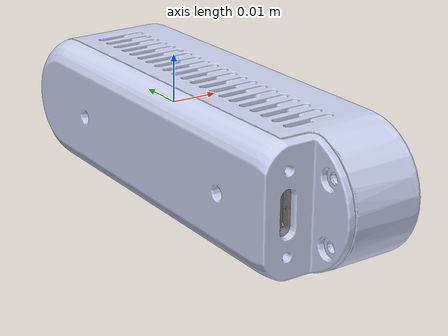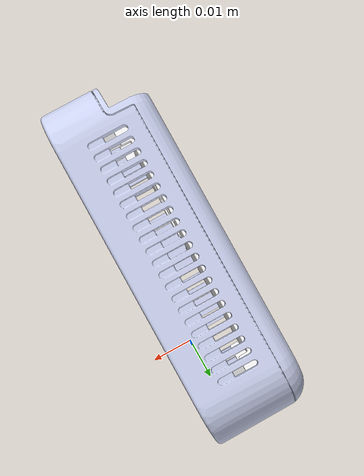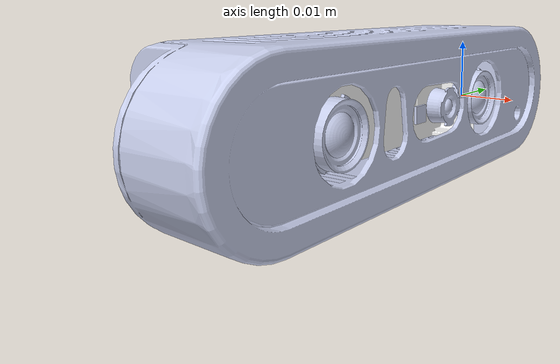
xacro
<?xml version="1.0" encoding="utf-8"?>
<robot name="dabai_dcw2" xmlns:xacro="http://ros.org/wiki/xacro">
    <xacro:include filename="dabai_dcw2.urdf.xacro"/>
  <link name="base_link"/>

  <joint name="base_link_to_camera_link" type="fixed">
    <parent link="base_link"/>
    <child link="camera_link"/>
    <origin xyz="0 0 0" rpy="0 0 0"/>
  </joint>
</robot>

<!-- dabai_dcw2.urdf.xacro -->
<robot xmlns:xacro="http://ros.org/wiki/xacro" name="dabai_dcw2">
    <xacro:property name="mesh_path" value="package://orbbec_description/meshes/dabai_dcw2/" />
  <link
    name="camera_bottom_screw_frame">
    <inertial>
      <origin
        xyz="0.00753601137002364 -0.000508837515662511 0.0122696825103624"
        rpy="0 0 0" />
      <mass
        value="0.0145098733371325" />
      <inertia
        ixx="1.31154092579587E-05"
        ixy="2.30174744915791E-07"
        ixz="-1.33602201591692E-09"
        iyy="1.37294183645858E-06"
        iyz="-1.54099158222408E-08"
        izz="1.23744229267791E-05" />
    </inertial>
    <visual>
      <origin
        xyz="0 0 0"
        rpy="0 0 0" />
      <geometry>
        <mesh
          filename="${mesh_path}camera_bottom_screw_frame.STL" />
      </geometry>
      <material
        name="">
        <color
          rgba="0.792156862745098 0.819607843137255 0.933333333333333 1" />
      </material>
    </visual>
    <collision>
      <origin
        xyz="0 0 0"
        rpy="0 0 0" />
      <geometry>
        <mesh
          filename="${mesh_path}camera_bottom_screw_frame.STL" />
      </geometry>
    </collision>
  </link>
  <link
    name="camera_link">
    <inertial>
      <origin
        xyz="-0.0118005356153812 -0.0141974857655144 0.000145850272853201"
        rpy="0 0 0" />
      <mass
        value="0.00671888510767732" />
      <inertia
        ixx="3.01293153853197E-06"
        ixy="2.40333600558122E-08"
        ixz="4.54286282508884E-09"
        iyy="3.06507725447966E-07"
        iyz="8.9126125587526E-09"
        izz="2.88108379431653E-06" />
    </inertial>
    <visual>
      <origin
        xyz="-0.01258 -0.02 -0.0123"
        rpy="0 0 0" />
      <geometry>
        <mesh
          filename="${mesh_path}base_link.STL" />
      </geometry>
      <material
        name="">
        <color
          rgba="1 1 1 1" />
      </material>
    </visual>
    <collision>
      <origin
        xyz="-0.01258 -0.02 -0.0123"
        rpy="0 0 0" />
      <geometry>
        <mesh
          filename="${mesh_path}base_link.STL" />
      </geometry>
    </collision>
  </link>
  <joint
    name="camera_bottom_screw_frame"
    type="fixed">
    <origin
      xyz="-0.01258 -0.02 -0.0123"
      rpy="0 0 0" />
    <parent
      link="camera_link" />
    <child
      link="camera_bottom_screw_frame" />
    <axis
      xyz="0 0 0" />
  </joint>
  <link
    name="camera_right_ir_frame">
    <inertial>
      <origin
        xyz="0.00215231622805329 2.59649261674655E-08 -3.21639014410014E-08"
        rpy="0 0 0" />
      <mass
        value="0.000275226856772834" />
      <inertia
        ixx="3.08047688060934E-09"
        ixy="-2.94969000144517E-15"
        ixz="3.6528725849673E-15"
        iyy="1.92908990518636E-09"
        iyz="2.50412547541003E-14"
        izz="1.92907796037669E-09" />
    </inertial>
    <visual>
      <origin
        xyz="0 0 0"
        rpy="0 0 0" />
      <geometry>
        <mesh
          filename="${mesh_path}camera_right_ir_frame.STL" />
      </geometry>
      <material
        name="">
        <color
          rgba="0.792156862745098 0.819607843137255 0.933333333333333 1" />
      </material>
    </visual>
    <collision>
      <origin
        xyz="0 0 0"
        rpy="0 0 0" />
      <geometry>
        <mesh
          filename="${mesh_path}camera_right_ir_frame.STL" />
      </geometry>
    </collision>
  </link>
  <joint
    name="camera_right_ir_frame"
    type="fixed">
    <origin
      xyz="0 -0.04 0"
      rpy="0 0 0" />
    <parent
      link="camera_depth_frame" />
    <child
      link="camera_right_ir_frame" />
    <axis
      xyz="0 0 0" />
  </joint>
  <link
    name="camera_left_ir_frame">
    <inertial>
      <origin
        xyz="0.00215231622805329 2.59649261709349E-08 -3.21639014402143E-08"
        rpy="0 0 0" />
      <mass
        value="0.000275226856772835" />
      <inertia
        ixx="3.08047688060934E-09"
        ixy="-2.94969000106677E-15"
        ixz="3.65287258472025E-15"
        iyy="1.92908990518636E-09"
        iyz="2.50412547533984E-14"
        izz="1.92907796037669E-09" />
    </inertial>
    <visual>
      <origin
        xyz="0 0 0"
        rpy="0 0 0" />
      <geometry>
        <mesh
          filename="${mesh_path}camera_left_ir_frame.STL" />
      </geometry>
      <material
        name="">
        <color
          rgba="0.792156862745098 0.819607843137255 0.933333333333333 1" />
      </material>
    </visual>
    <collision>
      <origin
        xyz="0 0 0"
        rpy="0 0 0" />
      <geometry>
        <mesh
          filename="${mesh_path}camera_left_ir_frame.STL" />
      </geometry>
    </collision>
  </link>
  <joint
    name="camera_left_ir_frame"
    type="fixed">
    <origin
      xyz="0 0 0"
      rpy="0 0 0" />
    <parent
      link="camera_depth_frame" />
    <child
      link="camera_left_ir_frame" />
    <axis
      xyz="0 0 0" />
  </joint>
  <link
    name="camera_color_frame">
    <inertial>
      <origin
        xyz="0.00113097254878149 -2.06072749905917E-08 -1.02739299139143E-14"
        rpy="0 0 0" />
      <mass
        value="7.23060568782203E-05" />
      <inertia
        ixx="3.05091809046364E-10"
        ixy="1.87866285644504E-15"
        ixz="6.59066094191097E-22"
        iyy="2.02503175970632E-10"
        iyz="7.98910742316642E-23"
        izz="2.02503175941704E-10" />
    </inertial>
    <visual>
      <origin
        xyz="0 0 0"
        rpy="0 0 0" />
      <geometry>
        <mesh
          filename="${mesh_path}camera_color_frame.STL" />
      </geometry>
      <material
        name="">
        <color
          rgba="0.792156862745098 0.819607843137255 0.933333333333333 1" />
      </material>
    </visual>
    <collision>
      <origin
        xyz="0 0 0"
        rpy="0 0 0" />
      <geometry>
        <mesh
          filename="${mesh_path}camera_color_frame.STL" />
      </geometry>
    </collision>
  </link>
  <joint
    name="camera_color_frame"
    type="fixed">
    <origin
      xyz="0.0019 -0.01233 0"
      rpy="0 0 0" />
    <parent
      link="camera_depth_frame" />
    <child
      link="camera_color_frame" />
    <axis
      xyz="0 0 0" />
  </joint>
  <link
    name="camera_usb_frame">
    <inertial>
      <origin
        xyz="-3.39829410782033E-05 0.000192142848535241 -0.000881642601060323"
        rpy="0 0 0" />
      <mass
        value="4.07232030117867E-07" />
      <inertia
        ixx="3.84280193694265E-14"
        ixy="3.16000630142094E-17"
        ixz="-5.51957028161441E-19"
        iyy="3.79177693322494E-14"
        iyz="-4.65761635837279E-19"
        izz="9.28041483015495E-15" />
    </inertial>
    <visual>
      <origin
        xyz="0 0 0"
        rpy="0 0 0" />
      <geometry>
        <mesh
          filename="${mesh_path}camera_usb_frame.STL" />
      </geometry>
      <material
        name="">
        <color
          rgba="0.454901960784314 0.454901960784314 0.454901960784314 1" />
      </material>
    </visual>
    <collision>
      <origin
        xyz="0 0 0"
        rpy="0 0 0" />
      <geometry>
        <mesh
          filename="${mesh_path}camera_usb_frame.STL" />
      </geometry>
    </collision>
  </link>
  <joint
    name="camera_usb_frame"
    type="fixed">
    <origin
      xyz="-0.01455 -0.049725 0"
      rpy="0 0 0" />
    <parent
      link="camera_link" />
    <child
      link="camera_usb_frame" />
    <axis
      xyz="0 0 0" />
  </joint>
  <link
    name="camera_depth_frame">
    <inertial>
      <origin
        xyz="0.00215231622805329 2.59649261709349E-08 -3.21639014401859E-08"
        rpy="0 0 0" />
      <mass
        value="0.000275226856772835" />
      <inertia
        ixx="3.08047688060934E-09"
        ixy="-2.9496900010814E-15"
        ixz="3.65287258472341E-15"
        iyy="1.92908990518636E-09"
        iyz="2.50412547534045E-14"
        izz="1.92907796037669E-09" />
    </inertial>
    <visual>
      <origin
        xyz="0 0 0"
        rpy="0 0 0" />
      <geometry>
        <mesh
          filename="${mesh_path}camera_depth_frame.STL" />
      </geometry>
      <material
        name="">
        <color
          rgba="0.792156862745098 0.819607843137255 0.933333333333333 1" />
      </material>
    </visual>
    <collision>
      <origin
        xyz="0 0 0"
        rpy="0 0 0" />
      <geometry>
        <mesh
          filename="${mesh_path}camera_depth_frame.STL" />
      </geometry>
    </collision>
  </link>
  <joint
    name="camera_depth_frame"
    type="fixed">
    <origin
      xyz="0 0 0"
      rpy="0 0 0" />
    <parent
      link="camera_link" />
    <child
      link="camera_depth_frame" />
    <axis
      xyz="0 0 0" />
  </joint>
</robot>
